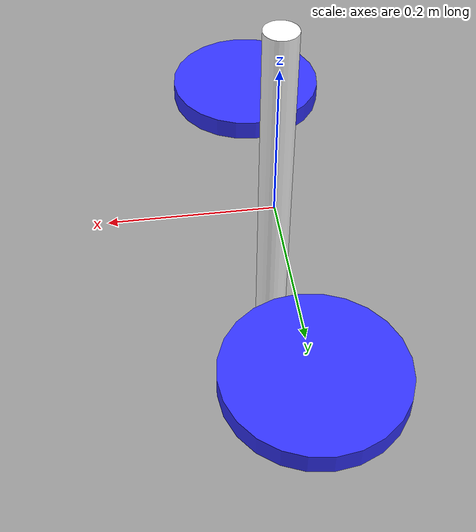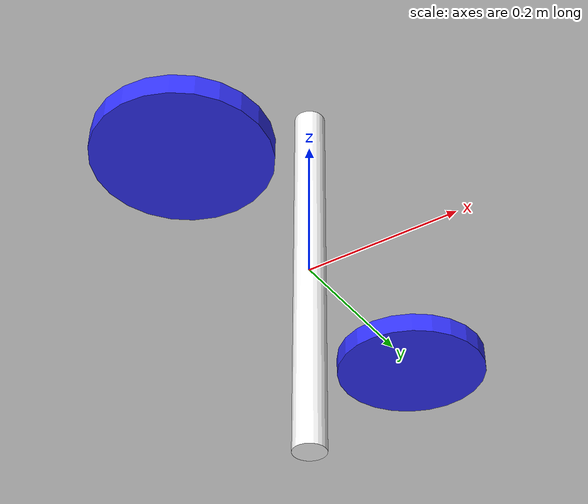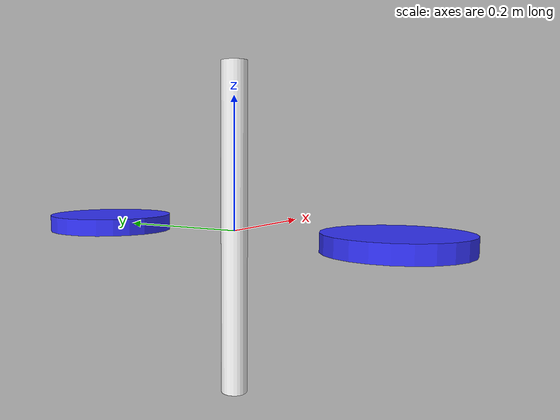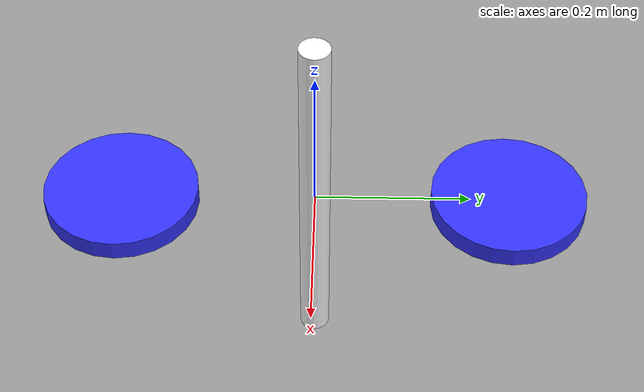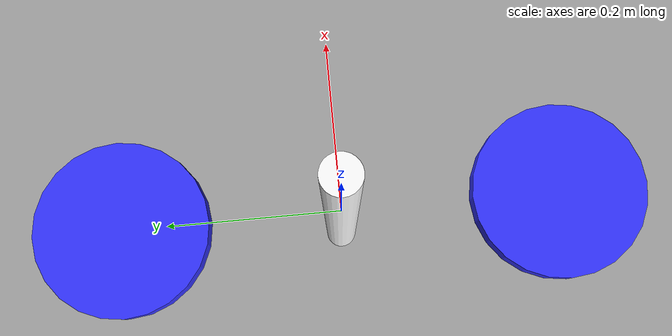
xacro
<?xml version="1.0" ?>
<robot name='two_wheeled_stick_robot' xmlns:xacro="http://ros.org/wiki/xacro">

    <xacro:property name="stick_length" value="0.5"/>
    <xacro:property name="stick_radius" value="0.02"/>
    <xacro:property name="wheel_radius" value="0.1"/>
    <xacro:property name="wheel_thickness" value="0.026"/>
    <xacro:property name="wheel_mass" value="0.05"/>
    <xacro:property name="wheel_offset_y" value="${stick_length / 2}"/>
    <xacro:property name="mass" value="1.0"/>

    <material name="blue">
        <color rgba="0.2 0.2 1 1"/>
    </material>

    <material name="white">
        <color rgba="1 1 1 1"/>
    </material>

    <!-- Stick structure -->
    <link name="stick">
        <inertial>
            <origin xyz="0 0 0" rpy="0 0 0"/>
            <mass value="${mass}" />
            <inertia ixx="0.001" ixy="0.0" ixz="0.0"
                     iyy="0.001" iyz="0.0"
                     izz="0.001"/>
        </inertial>
        <visual>
            <origin xyz="0 0 0"/>
            <geometry>
                <cylinder radius="${stick_radius}" length="${stick_length}"/>
            </geometry>
            <material name="white"/>
        </visual>
        <collision>
            <origin xyz="0 0 0"/>
            <geometry>
                <cylinder radius="${stick_radius}" length="${stick_length}"/>
            </geometry>
        </collision>
    </link>

    <!-- Left Wheel -->
    <joint name="left_wheel_joint" type="continuous">
        <parent link="stick"/>
        <child link="left_wheel"/>
        <origin xyz="0 ${wheel_offset_y} 0" rpy="0 0 0"/>
        <axis xyz="0 0 1"/>
    </joint>

    <link name="left_wheel">
        <visual>
            <geometry>
                <cylinder radius="${wheel_radius}" length="${wheel_thickness}"/>
            </geometry>
            <material name="blue"/>
        </visual>
        <collision>
            <geometry>
                <cylinder radius="${wheel_radius}" length="${wheel_thickness}"/>
            </geometry>
        </collision>
        <inertial>
            <origin xyz="0 0 0" rpy="0 0 0"/>
            <mass value="${wheel_mass}" />
            <inertia ixx="0.001" ixy="0.0" ixz="0.0"
                     iyy="0.001" iyz="0.0"
                     izz="0.001"/>
        </inertial>
    </link>

    <!-- Right Wheel -->
    <joint name="right_wheel_joint" type="continuous">
        <parent link="stick"/>
        <child link="right_wheel"/>
        <origin xyz="0 ${-wheel_offset_y} 0" rpy="0 0 0"/>
        <axis xyz="0 0 -1"/>
    </joint>

    <link name="right_wheel">
        <visual>
            <geometry>
                <cylinder radius="${wheel_radius}" length="${wheel_thickness}"/>
            </geometry>
            <material name="blue"/>
        </visual>
        <collision>
            <geometry>
                <cylinder radius="${wheel_radius}" length="${wheel_thickness}"/>
            </geometry>
        </collision>
        <inertial>
            <origin xyz="0 0 0" rpy="0 0 0"/>
            <mass value="${wheel_mass}" />
            <inertia ixx="0.001" ixy="0.0" ixz="0.0"
                     iyy="0.001" iyz="0.0"
                     izz="0.001"/>
        </inertial>
    </link>

</robot>
